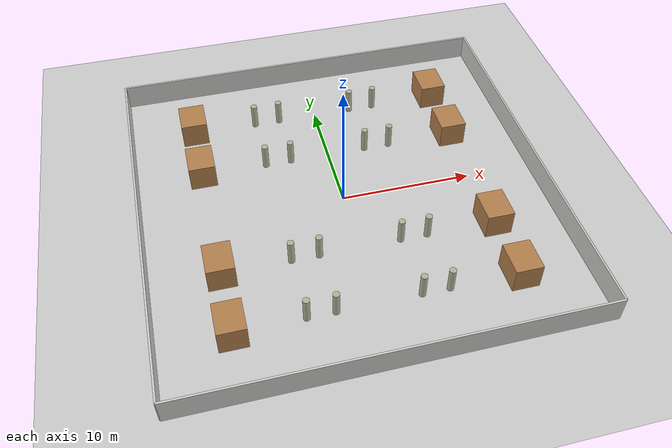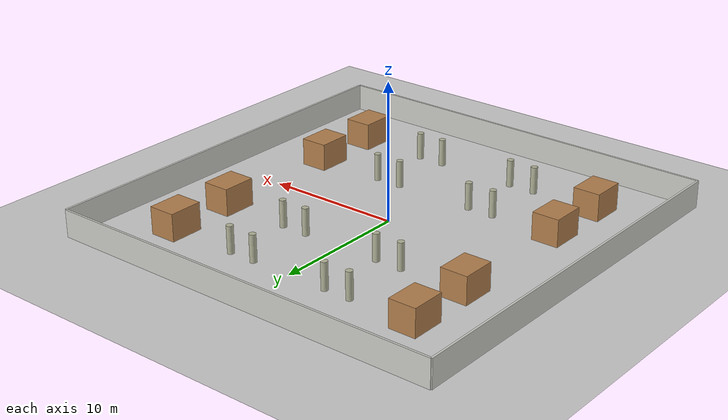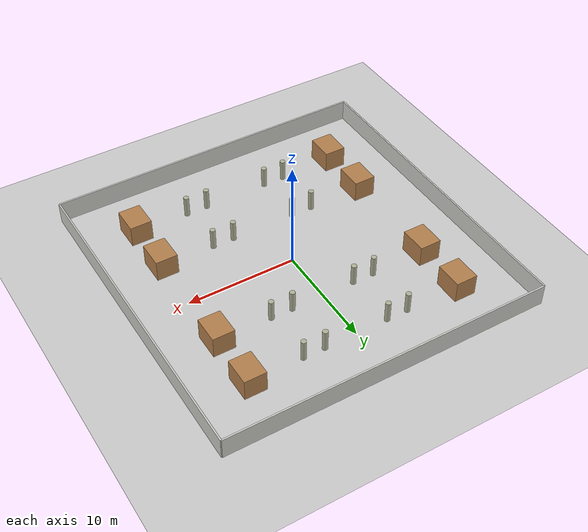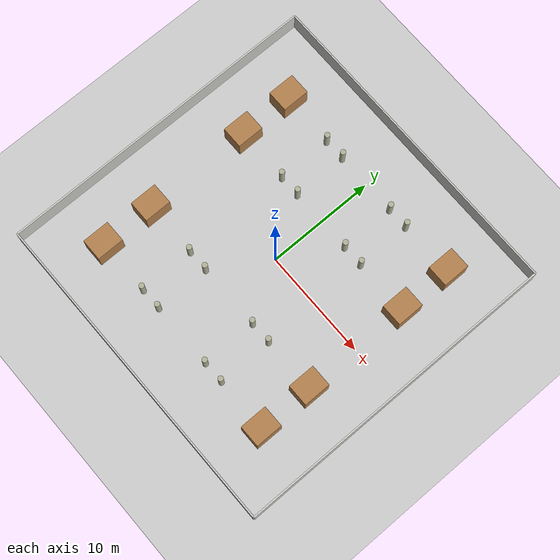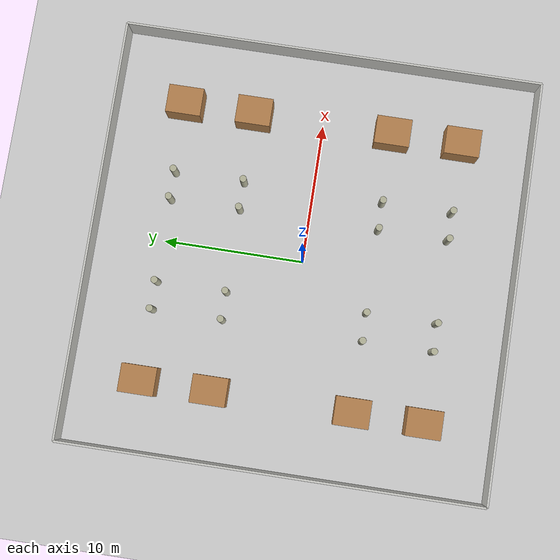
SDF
<sdf version="1.6">
 <world name="default">
  <light name="sun" type="directional">
   <pose>0 0 10 0 -0 0</pose>
   <diffuse>0.8 0.8 0.8 1</diffuse>
   <specular>0.1 0.1 0.1 1</specular>
   <attenuation>
    <range>1000</range>
    <constant>0.9</constant>
    <linear>0.01</linear>
    <quadratic>0.001</quadratic>
   </attenuation>
   <direction>-0.5 0.5 -1</direction>
   <spot><inner_angle>0</inner_angle><outer_angle>0</outer_angle><falloff>0</falloff></spot>
  </light>
  <model name="ground_plane">
   <static>1</static>
   <link name="link">
    <collision name="collision">
     <geometry><plane><normal>0 0 1</normal><size>100 100</size></plane></geometry>
     <surface><friction><ode><mu>100</mu><mu2>50</mu2></ode></friction></surface>
    </collision>
    <visual name="visual">
     <cast_shadows>0</cast_shadows>
     <geometry><plane><normal>0 0 1</normal><size>100 100</size></plane></geometry>
     <material><color rgba="0.3 0.3 0.3 1"/></material>
    </visual>
   </link>
  </model>
  <gravity>0 0 -9.8</gravity>
  <magnetic_field>6e-06 2.3e-05 -4.2e-05</magnetic_field>
  <atmosphere type="adiabatic"/>
  <physics name="default_physics" default="0" type="ode">
   <max_step_size>0.001</max_step_size>
   <real_time_factor>1</real_time_factor>
   <real_time_update_rate>1000</real_time_update_rate>
  </physics>
  <scene><ambient>0.4 0.4 0.4 1</ambient><background>0.7 0.7 0.7 1</background><shadows>1</shadows></scene>
  <spherical_coordinates>
   <surface_model>EARTH_WGS84</surface_model>
   <latitude_deg>0</latitude_deg>
   <longitude_deg>0</longitude_deg>
   <elevation>0</elevation>
   <heading_deg>0</heading_deg>
  </spherical_coordinates>
  <model name="box">
   <link name="box_1">
    <pose>-10 10 0.5 0 -0 3.14159</pose>
    <visual name="box_1_Visual">
     <pose>0 0 0.5 0 -0 0</pose>
     <geometry><box><size>2 2.5 2</size></box></geometry>
     <material>
      <script><uri>file://media/materials/scripts/gazebo.material</uri><name>Gazebo/Wood</name></script>
      <ambient>1 1 1 1</ambient>
      <diffuse>1 1 1 1</diffuse>
      <specular>0.2 0.2 0.2 1</specular>
      <emissive>0 0 0 1</emissive>
     </material>
     <meta><layer>0</layer></meta>
    </visual>
    <collision name="box_1_Collision">
     <pose>0 0 0.5 0 -0 0</pose>
     <geometry><box><size>2 2.5 2</size></box></geometry>
     <surface>
      <friction>
       <ode><mu>1</mu><mu2>1</mu2><fdir1>0 0 0</fdir1><slip1>0</slip1><slip2>0</slip2></ode>
       <torsional>
        <coefficient>1</coefficient>
        <patch_radius>0</patch_radius>
        <surface_radius>0</surface_radius>
        <use_patch_radius>1</use_patch_radius>
        <ode><slip>0</slip></ode>
       </torsional>
      </friction>
      <bounce><restitution_coefficient>0</restitution_coefficient><threshold>1e+06</threshold></bounce>
      <contact>
       <collide_without_contact>0</collide_without_contact>
       <collide_without_contact_bitmask>1</collide_without_contact_bitmask>
       <collide_bitmask>1</collide_bitmask>
       <ode>
        <soft_cfm>0</soft_cfm>
        <soft_erp>0.2</soft_erp>
        <kp>1e+13</kp>
        <kd>1</kd>
        <max_vel>0.01</max_vel>
        <min_depth>0</min_depth>
       </ode>
       <bullet>
        <split_impulse>1</split_impulse>
        <split_impulse_penetration_threshold>-0.01</split_impulse_penetration_threshold>
        <soft_cfm>0</soft_cfm>
        <soft_erp>0.2</soft_erp>
        <kp>1e+13</kp>
        <kd>1</kd>
       </bullet>
      </contact>
     </surface>
    </collision>
   </link>
   <link name="box_2">
    <pose>-10 5 0.5 0 -0 3.14159</pose>
    <visual name="box_2_Visual">
     <pose>0 0 0.5 0 -0 0</pose>
     <geometry><box><size>2 2.5 2</size></box></geometry>
     <material>
      <script><uri>file://media/materials/scripts/gazebo.material</uri><name>Gazebo/Wood</name></script>
      <ambient>1 1 1 1</ambient>
      <diffuse>1 1 1 1</diffuse>
      <specular>0.2 0.2 0.2 1</specular>
      <emissive>0 0 0 1</emissive>
     </material>
     <meta><layer>0</layer></meta>
    </visual>
    <collision name="box_2_Collision">
     <pose>0 0 0.5 0 -0 0</pose>
     <geometry><box><size>2 2.5 2</size></box></geometry>
     <surface>
      <friction>
       <ode><mu>1</mu><mu2>1</mu2><fdir1>0 0 0</fdir1><slip1>0</slip1><slip2>0</slip2></ode>
       <torsional>
        <coefficient>1</coefficient>
        <patch_radius>0</patch_radius>
        <surface_radius>0</surface_radius>
        <use_patch_radius>1</use_patch_radius>
        <ode><slip>0</slip></ode>
       </torsional>
      </friction>
      <bounce><restitution_coefficient>0</restitution_coefficient><threshold>1e+06</threshold></bounce>
      <contact>
       <collide_without_contact>0</collide_without_contact>
       <collide_without_contact_bitmask>1</collide_without_contact_bitmask>
       <collide_bitmask>1</collide_bitmask>
       <ode>
        <soft_cfm>0</soft_cfm>
        <soft_erp>0.2</soft_erp>
        <kp>1e+13</kp>
        <kd>1</kd>
        <max_vel>0.01</max_vel>
        <min_depth>0</min_depth>
       </ode>
       <bullet>
        <split_impulse>1</split_impulse>
        <split_impulse_penetration_threshold>-0.01</split_impulse_penetration_threshold>
        <soft_cfm>0</soft_cfm>
        <soft_erp>0.2</soft_erp>
        <kp>1e+13</kp>
        <kd>1</kd>
       </bullet>
      </contact>
     </surface>
    </collision>
   </link>
   <link name="box_3">
    <pose>-10 -5 0.5 0 -0 3.14159</pose>
    <visual name="box_3_Visual">
     <pose>0 0 0.5 0 -0 0</pose>
     <geometry><box><size>2 2.5 2</size></box></geometry>
     <material>
      <script><uri>file://media/materials/scripts/gazebo.material</uri><name>Gazebo/Wood</name></script>
      <ambient>1 1 1 1</ambient>
      <diffuse>1 1 1 1</diffuse>
      <specular>0.2 0.2 0.2 1</specular>
      <emissive>0 0 0 1</emissive>
     </material>
     <meta><layer>0</layer></meta>
    </visual>
    <collision name="box_3_Collision">
     <pose>0 0 0.5 0 -0 0</pose>
     <geometry><box><size>2 2.5 2</size></box></geometry>
     <surface>
      <friction>
       <ode><mu>1</mu><mu2>1</mu2><fdir1>0 0 0</fdir1><slip1>0</slip1><slip2>0</slip2></ode>
       <torsional>
        <coefficient>1</coefficient>
        <patch_radius>0</patch_radius>
        <surface_radius>0</surface_radius>
        <use_patch_radius>1</use_patch_radius>
        <ode><slip>0</slip></ode>
       </torsional>
      </friction>
      <bounce><restitution_coefficient>0</restitution_coefficient><threshold>1e+06</threshold></bounce>
      <contact>
       <collide_without_contact>0</collide_without_contact>
       <collide_without_contact_bitmask>1</collide_without_contact_bitmask>
       <collide_bitmask>1</collide_bitmask>
       <ode>
        <soft_cfm>0</soft_cfm>
        <soft_erp>0.2</soft_erp>
        <kp>1e+13</kp>
        <kd>1</kd>
        <max_vel>0.01</max_vel>
        <min_depth>0</min_depth>
       </ode>
       <bullet>
        <split_impulse>1</split_impulse>
        <split_impulse_penetration_threshold>-0.01</split_impulse_penetration_threshold>
        <soft_cfm>0</soft_cfm>
        <soft_erp>0.2</soft_erp>
        <kp>1e+13</kp>
        <kd>1</kd>
       </bullet>
      </contact>
     </surface>
    </collision>
   </link>
   <link name="box_4">
    <pose>-10 -10 0.5 0 -0 3.14159</pose>
    <visual name="box_4_Visual">
     <pose>0 0 0.5 0 -0 0</pose>
     <geometry><box><size>2 2.5 2</size></box></geometry>
     <material>
      <script><uri>file://media/materials/scripts/gazebo.material</uri><name>Gazebo/Wood</name></script>
      <ambient>1 1 1 1</ambient>
      <diffuse>1 1 1 1</diffuse>
      <specular>0.2 0.2 0.2 1</specular>
      <emissive>0 0 0 1</emissive>
     </material>
     <meta><layer>0</layer></meta>
    </visual>
    <collision name="box_4_Collision">
     <pose>0 0 0.5 0 -0 0</pose>
     <geometry><box><size>2 2.5 2</size></box></geometry>
     <surface>
      <friction>
       <ode><mu>1</mu><mu2>1</mu2><fdir1>0 0 0</fdir1><slip1>0</slip1><slip2>0</slip2></ode>
       <torsional>
        <coefficient>1</coefficient>
        <patch_radius>0</patch_radius>
        <surface_radius>0</surface_radius>
        <use_patch_radius>1</use_patch_radius>
        <ode><slip>0</slip></ode>
       </torsional>
      </friction>
      <bounce><restitution_coefficient>0</restitution_coefficient><threshold>1e+06</threshold></bounce>
      <contact>
       <collide_without_contact>0</collide_without_contact>
       <collide_without_contact_bitmask>1</collide_without_contact_bitmask>
       <collide_bitmask>1</collide_bitmask>
       <ode>
        <soft_cfm>0</soft_cfm>
        <soft_erp>0.2</soft_erp>
        <kp>1e+13</kp>
        <kd>1</kd>
        <max_vel>0.01</max_vel>
        <min_depth>0</min_depth>
       </ode>
       <bullet>
        <split_impulse>1</split_impulse>
        <split_impulse_penetration_threshold>-0.01</split_impulse_penetration_threshold>
        <soft_cfm>0</soft_cfm>
        <soft_erp>0.2</soft_erp>
        <kp>1e+13</kp>
        <kd>1</kd>
       </bullet>
      </contact>
     </surface>
    </collision>
   </link>
   <link name="box_5">
    <pose>10 -10 0.5 0 -0 3.14159</pose>
    <visual name="box_5_Visual">
     <pose>0 0 0.5 0 -0 0</pose>
     <geometry><box><size>2 2.5 2</size></box></geometry>
     <material>
      <script><uri>file://media/materials/scripts/gazebo.material</uri><name>Gazebo/Wood</name></script>
      <ambient>1 1 1 1</ambient>
      <diffuse>1 1 1 1</diffuse>
      <specular>0.2 0.2 0.2 1</specular>
      <emissive>0 0 0 1</emissive>
     </material>
     <meta><layer>0</layer></meta>
    </visual>
    <collision name="box_5_Collision">
     <pose>0 0 0.5 0 -0 0</pose>
     <geometry><box><size>2 2.5 2</size></box></geometry>
     <surface>
      <friction>
       <ode><mu>1</mu><mu2>1</mu2><fdir1>0 0 0</fdir1><slip1>0</slip1><slip2>0</slip2></ode>
       <torsional>
        <coefficient>1</coefficient>
        <patch_radius>0</patch_radius>
        <surface_radius>0</surface_radius>
        <use_patch_radius>1</use_patch_radius>
        <ode><slip>0</slip></ode>
       </torsional>
      </friction>
      <bounce><restitution_coefficient>0</restitution_coefficient><threshold>1e+06</threshold></bounce>
      <contact>
       <collide_without_contact>0</collide_without_contact>
       <collide_without_contact_bitmask>1</collide_without_contact_bitmask>
       <collide_bitmask>1</collide_bitmask>
       <ode>
        <soft_cfm>0</soft_cfm>
        <soft_erp>0.2</soft_erp>
        <kp>1e+13</kp>
        <kd>1</kd>
        <max_vel>0.01</max_vel>
        <min_depth>0</min_depth>
       </ode>
       <bullet>
        <split_impulse>1</split_impulse>
        <split_impulse_penetration_threshold>-0.01</split_impulse_penetration_threshold>
        <soft_cfm>0</soft_cfm>
        <soft_erp>0.2</soft_erp>
        <kp>1e+13</kp>
        <kd>1</kd>
       </bullet>
      </contact>
     </surface>
    </collision>
   </link>
   <link name="box_6">
    <pose>10 -5 0.5 0 -0 3.14159</pose>
    <visual name="box_6_Visual">
     <pose>0 0 0.5 0 -0 0</pose>
     <geometry><box><size>2 2.5 2</size></box></geometry>
     <material>
      <script><uri>file://media/materials/scripts/gazebo.material</uri><name>Gazebo/Wood</name></script>
      <ambient>1 1 1 1</ambient>
      <diffuse>1 1 1 1</diffuse>
      <specular>0.2 0.2 0.2 1</specular>
      <emissive>0 0 0 1</emissive>
     </material>
     <meta><layer>0</layer></meta>
    </visual>
    <collision name="box_6_Collision">
     <pose>0 0 0.5 0 -0 0</pose>
     <geometry><box><size>2 2.5 2</size></box></geometry>
     <surface>
      <friction>
       <ode><mu>1</mu><mu2>1</mu2><fdir1>0 0 0</fdir1><slip1>0</slip1><slip2>0</slip2></ode>
       <torsional>
        <coefficient>1</coefficient>
        <patch_radius>0</patch_radius>
        <surface_radius>0</surface_radius>
        <use_patch_radius>1</use_patch_radius>
        <ode><slip>0</slip></ode>
       </torsional>
      </friction>
      <bounce><restitution_coefficient>0</restitution_coefficient><threshold>1e+06</threshold></bounce>
      <contact>
       <collide_without_contact>0</collide_without_contact>
       <collide_without_contact_bitmask>1</collide_without_contact_bitmask>
       <collide_bitmask>1</collide_bitmask>
       <ode>
        <soft_cfm>0</soft_cfm>
        <soft_erp>0.2</soft_erp>
        <kp>1e+13</kp>
        <kd>1</kd>
        <max_vel>0.01</max_vel>
        <min_depth>0</min_depth>
       </ode>
       <bullet>
        <split_impulse>1</split_impulse>
        <split_impulse_penetration_threshold>-0.01</split_impulse_penetration_threshold>
        <soft_cfm>0</soft_cfm>
        <soft_erp>0.2</soft_erp>
        <kp>1e+13</kp>
        <kd>1</kd>
       </bullet>
      </contact>
     </surface>
    </collision>
   </link>
   <link name="box_7">
    <pose>10 5 0.5 0 -0 3.14159</pose>
    <visual name="box_7_Visual">
     <pose>0 0 0.5 0 -0 0</pose>
     <geometry><box><size>2 2.5 2</size></box></geometry>
     <material>
      <script><uri>file://media/materials/scripts/gazebo.material</uri><name>Gazebo/Wood</name></script>
      <ambient>1 1 1 1</ambient>
      <diffuse>1 1 1 1</diffuse>
      <specular>0.2 0.2 0.2 1</specular>
      <emissive>0 0 0 1</emissive>
     </material>
     <meta><layer>0</layer></meta>
    </visual>
    <collision name="box_7_Collision">
     <pose>0 0 0.5 0 -0 0</pose>
     <geometry><box><size>2 2.5 2</size></box></geometry>
     <surface>
      <friction>
       <ode><mu>1</mu><mu2>1</mu2><fdir1>0 0 0</fdir1><slip1>0</slip1><slip2>0</slip2></ode>
       <torsional>
        <coefficient>1</coefficient>
        <patch_radius>0</patch_radius>
        <surface_radius>0</surface_radius>
        <use_patch_radius>1</use_patch_radius>
        <ode><slip>0</slip></ode>
       </torsional>
      </friction>
      <bounce><restitution_coefficient>0</restitution_coefficient><threshold>1e+06</threshold></bounce>
      <contact>
       <collide_without_contact>0</collide_without_contact>
       <collide_without_contact_bitmask>1</collide_without_contact_bitmask>
       <collide_bitmask>1</collide_bitmask>
       <ode>
        <soft_cfm>0</soft_cfm>
        <soft_erp>0.2</soft_erp>
        <kp>1e+13</kp>
        <kd>1</kd>
        <max_vel>0.01</max_vel>
        <min_depth>0</min_depth>
       </ode>
       <bullet>
        <split_impulse>1</split_impulse>
        <split_impulse_penetration_threshold>-0.01</split_impulse_penetration_threshold>
        <soft_cfm>0</soft_cfm>
        <soft_erp>0.2</soft_erp>
        <kp>1e+13</kp>
        <kd>1</kd>
       </bullet>
      </contact>
     </surface>
    </collision>
   </link>
   <link name="box_8">
    <pose>10 10 0.5 0 -0 3.14159</pose>
    <visual name="box_8_Visual">
     <pose>0 0 0.5 0 -0 0</pose>
     <geometry><box><size>2 2.5 2</size></box></geometry>
     <material>
      <script><uri>file://media/materials/scripts/gazebo.material</uri><name>Gazebo/Wood</name></script>
      <ambient>1 1 1 1</ambient>
      <diffuse>1 1 1 1</diffuse>
      <specular>0.2 0.2 0.2 1</specular>
      <emissive>0 0 0 1</emissive>
     </material>
     <meta><layer>0</layer></meta>
    </visual>
    <collision name="box_8_Collision">
     <pose>0 0 0.5 0 -0 0</pose>
     <geometry><box><size>2 2.5 2</size></box></geometry>
     <surface>
      <friction>
       <ode><mu>1</mu><mu2>1</mu2><fdir1>0 0 0</fdir1><slip1>0</slip1><slip2>0</slip2></ode>
       <torsional>
        <coefficient>1</coefficient>
        <patch_radius>0</patch_radius>
        <surface_radius>0</surface_radius>
        <use_patch_radius>1</use_patch_radius>
        <ode><slip>0</slip></ode>
       </torsional>
      </friction>
      <bounce><restitution_coefficient>0</restitution_coefficient><threshold>1e+06</threshold></bounce>
      <contact>
       <collide_without_contact>0</collide_without_contact>
       <collide_without_contact_bitmask>1</collide_without_contact_bitmask>
       <collide_bitmask>1</collide_bitmask>
       <ode>
        <soft_cfm>0</soft_cfm>
        <soft_erp>0.2</soft_erp>
        <kp>1e+13</kp>
        <kd>1</kd>
        <max_vel>0.01</max_vel>
        <min_depth>0</min_depth>
       </ode>
       <bullet>
        <split_impulse>1</split_impulse>
        <split_impulse_penetration_threshold>-0.01</split_impulse_penetration_threshold>
        <soft_cfm>0</soft_cfm>
        <soft_erp>0.2</soft_erp>
        <kp>1e+13</kp>
        <kd>1</kd>
       </bullet>
      </contact>
     </surface>
    </collision>
   </link>
   <link name="Wall_1">
    <pose>0 15 0 0 -0 0</pose>
    <visual name="Wall_1_Visual">
     <pose>0 0 1 0 -0 0</pose>
     <geometry><box><size>30 0.15 2</size></box></geometry>
     <material>
      <script><uri>file://media/materials/scripts/gazebo.material</uri><name>Gazebo/CeilingTiled</name></script>
      <ambient>1 1 1 1</ambient>
      <diffuse>1 1 1 1</diffuse>
      <specular>0.2 0.2 0.2 1</specular>
      <emissive>0 0 0 1</emissive>
     </material>
     <meta><layer>0</layer></meta>
    </visual>
    <collision name="Wall_1_Collision">
     <pose>0 0 1 0 -0 0</pose>
     <geometry><box><size>30 0.15 2</size></box></geometry>
     <surface>
      <friction>
       <ode><mu>1</mu><mu2>1</mu2><fdir1>0 0 0</fdir1><slip1>0</slip1><slip2>0</slip2></ode>
       <torsional>
        <coefficient>1</coefficient>
        <patch_radius>0</patch_radius>
        <surface_radius>0</surface_radius>
        <use_patch_radius>1</use_patch_radius>
        <ode><slip>0</slip></ode>
       </torsional>
      </friction>
      <bounce><restitution_coefficient>0</restitution_coefficient><threshold>1e+06</threshold></bounce>
      <contact>
       <collide_without_contact>0</collide_without_contact>
       <collide_without_contact_bitmask>1</collide_without_contact_bitmask>
       <collide_bitmask>1</collide_bitmask>
       <ode>
        <soft_cfm>0</soft_cfm>
        <soft_erp>0.2</soft_erp>
        <kp>1e+13</kp>
        <kd>1</kd>
        <max_vel>0.01</max_vel>
        <min_depth>0</min_depth>
       </ode>
       <bullet>
        <split_impulse>1</split_impulse>
        <split_impulse_penetration_threshold>-0.01</split_impulse_penetration_threshold>
        <soft_cfm>0</soft_cfm>
        <soft_erp>0.2</soft_erp>
        <kp>1e+13</kp>
        <kd>1</kd>
       </bullet>
      </contact>
     </surface>
    </collision>
   </link>
   <link name="Wall_2">
    <pose>15 0 0 0 0 -1.5708</pose>
    <visual name="Wall_2_Visual">
     <pose>0 0 1 0 -0 0</pose>
     <geometry><box><size>30 0.15 2</size></box></geometry>
     <material>
      <script><uri>file://media/materials/scripts/gazebo.material</uri><name>Gazebo/CeilingTiled</name></script>
      <ambient>1 1 1 1</ambient>
      <diffuse>1 1 1 1</diffuse>
      <specular>0.2 0.2 0.2 1</specular>
      <emissive>0 0 0 1</emissive>
     </material>
     <meta><layer>0</layer></meta>
    </visual>
    <collision name="Wall_2_Collision">
     <pose>0 0 1 0 -0 0</pose>
     <geometry><box><size>30 0.15 2</size></box></geometry>
     <surface>
      <friction>
       <ode><mu>1</mu><mu2>1</mu2><fdir1>0 0 0</fdir1><slip1>0</slip1><slip2>0</slip2></ode>
       <torsional>
        <coefficient>1</coefficient>
        <patch_radius>0</patch_radius>
        <surface_radius>0</surface_radius>
        <use_patch_radius>1</use_patch_radius>
        <ode><slip>0</slip></ode>
       </torsional>
      </friction>
      <bounce><restitution_coefficient>0</restitution_coefficient><threshold>1e+06</threshold></bounce>
      <contact>
       <collide_without_contact>0</collide_without_contact>
       <collide_without_contact_bitmask>1</collide_without_contact_bitmask>
       <collide_bitmask>1</collide_bitmask>
       <ode>
        <soft_cfm>0</soft_cfm>
        <soft_erp>0.2</soft_erp>
        <kp>1e+13</kp>
        <kd>1</kd>
        <max_vel>0.01</max_vel>
        <min_depth>0</min_depth>
       </ode>
       <bullet>
        <split_impulse>1</split_impulse>
        <split_impulse_penetration_threshold>-0.01</split_impulse_penetration_threshold>
        <soft_cfm>0</soft_cfm>
        <soft_erp>0.2</soft_erp>
        <kp>1e+13</kp>
        <kd>1</kd>
       </bullet>
      </contact>
     </surface>
    </collision>
   </link>
   <link name="Wall_3">
    <pose>0 -15 0 0 -0 3.14159</pose>
    <visual name="Wall_3_Visual">
     <pose>0 0 1 0 -0 0</pose>
     <geometry><box><size>30 0.15 2</size></box></geometry>
     <material>
      <script><uri>file://media/materials/scripts/gazebo.material</uri><name>Gazebo/CeilingTiled</name></script>
      <ambient>1 1 1 1</ambient>
      <diffuse>1 1 1 1</diffuse>
      <specular>0.2 0.2 0.2 1</specular>
      <emissive>0 0 0 1</emissive>
     </material>
     <meta><layer>0</layer></meta>
    </visual>
    <collision name="Wall_3_Collision">
     <pose>0 0 1 0 -0 0</pose>
     <geometry><box><size>30 0.15 2</size></box></geometry>
     <surface>
      <friction>
       <ode><mu>1</mu><mu2>1</mu2><fdir1>0 0 0</fdir1><slip1>0</slip1><slip2>0</slip2></ode>
       <torsional>
        <coefficient>1</coefficient>
        <patch_radius>0</patch_radius>
        <surface_radius>0</surface_radius>
        <use_patch_radius>1</use_patch_radius>
        <ode><slip>0</slip></ode>
       </torsional>
      </friction>
      <bounce><restitution_coefficient>0</restitution_coefficient><threshold>1e+06</threshold></bounce>
      <contact>
       <collide_without_contact>0</collide_without_contact>
       <collide_without_contact_bitmask>1</collide_without_contact_bitmask>
       <collide_bitmask>1</collide_bitmask>
       <ode>
        <soft_cfm>0</soft_cfm>
        <soft_erp>0.2</soft_erp>
        <kp>1e+13</kp>
        <kd>1</kd>
        <max_vel>0.01</max_vel>
        <min_depth>0</min_depth>
       </ode>
       <bullet>
        <split_impulse>1</split_impulse>
        <split_impulse_penetration_threshold>-0.01</split_impulse_penetration_threshold>
        <soft_cfm>0</soft_cfm>
        <soft_erp>0.2</soft_erp>
        <kp>1e+13</kp>
        <kd>1</kd>
       </bullet>
      </contact>
     </surface>
    </collision>
   </link>
   <link name="Wall_4">
    <pose>-15 0 0 0 -0 1.5708</pose>
    <visual name="Wall_4_Visual">
     <pose>0 0 1 0 -0 0</pose>
     <geometry><box><size>30 0.15 2</size></box></geometry>
     <material>
      <script><uri>file://media/materials/scripts/gazebo.material</uri><name>Gazebo/CeilingTiled</name></script>
      <ambient>1 1 1 1</ambient>
      <diffuse>1 1 1 1</diffuse>
      <specular>0.2 0.2 0.2 1</specular>
      <emissive>0 0 0 1</emissive>
     </material>
     <meta><layer>0</layer></meta>
    </visual>
    <collision name="Wall_4_Collision">
     <pose>0 0 1 0 -0 0</pose>
     <geometry><box><size>30 0.15 2</size></box></geometry>
     <surface>
      <friction>
       <ode><mu>1</mu><mu2>1</mu2><fdir1>0 0 0</fdir1><slip1>0</slip1><slip2>0</slip2></ode>
       <torsional>
        <coefficient>1</coefficient>
        <patch_radius>0</patch_radius>
        <surface_radius>0</surface_radius>
        <use_patch_radius>1</use_patch_radius>
        <ode><slip>0</slip></ode>
       </torsional>
      </friction>
      <bounce><restitution_coefficient>0</restitution_coefficient><threshold>1e+06</threshold></bounce>
      <contact>
       <collide_without_contact>0</collide_without_contact>
       <collide_without_contact_bitmask>1</collide_without_contact_bitmask>
       <collide_bitmask>1</collide_bitmask>
       <ode>
        <soft_cfm>0</soft_cfm>
        <soft_erp>0.2</soft_erp>
        <kp>1e+13</kp>
        <kd>1</kd>
        <max_vel>0.01</max_vel>
        <min_depth>0</min_depth>
       </ode>
       <bullet>
        <split_impulse>1</split_impulse>
        <split_impulse_penetration_threshold>-0.01</split_impulse_penetration_threshold>
        <soft_cfm>0</soft_cfm>
        <soft_erp>0.2</soft_erp>
        <kp>1e+13</kp>
        <kd>1</kd>
       </bullet>
      </contact>
     </surface>
    </collision>
   </link>
   <static>1</static>
  </model>
  <model name="cylinder_1">
   <pose>-5 -10 1 0 -0 0</pose>
   <link name="link">
    <inertial>
     <mass>1</mass>
     <inertia><ixx>0.145833</ixx><ixy>0</ixy><ixz>0</ixz><iyy>0.145833</iyy><iyz>0</iyz><izz>0.125</izz></inertia>
    </inertial>
    <collision name="collision">
     <geometry><cylinder><radius>0.245816</radius><length>2</length></cylinder></geometry>
    </collision>
    <visual name="visual">
     <geometry><cylinder><radius>0.245816</radius><length>2</length></cylinder></geometry>
     <material>
      <script><name>Gazebo/Residential</name><uri>file://media/materials/scripts/gazebo.material</uri></script>
     </material>
    </visual>
   </link>
  </model>
  <model name="cylinder_2">
   <pose>-3 -10 1 0 -0 0</pose>
   <link name="link">
    <inertial>
     <mass>1</mass>
     <inertia><ixx>0.145833</ixx><ixy>0</ixy><ixz>0</ixz><iyy>0.145833</iyy><iyz>0</iyz><izz>0.125</izz></inertia>
    </inertial>
    <collision name="collision">
     <geometry><cylinder><radius>0.245816</radius><length>2</length></cylinder></geometry>
    </collision>
    <visual name="visual">
     <geometry><cylinder><radius>0.245816</radius><length>2</length></cylinder></geometry>
     <material>
      <script><name>Gazebo/Residential</name><uri>file://media/materials/scripts/gazebo.material</uri></script>
     </material>
    </visual>
   </link>
  </model>
  <model name="cylinder_3">
   <pose>-5 -5 1 0 -0 0</pose>
   <link name="link">
    <inertial>
     <mass>1</mass>
     <inertia><ixx>0.145833</ixx><ixy>0</ixy><ixz>0</ixz><iyy>0.145833</iyy><iyz>0</iyz><izz>0.125</izz></inertia>
    </inertial>
    <collision name="collision">
     <geometry><cylinder><radius>0.245816</radius><length>2</length></cylinder></geometry>
    </collision>
    <visual name="visual">
     <geometry><cylinder><radius>0.245816</radius><length>2</length></cylinder></geometry>
     <material>
      <script><name>Gazebo/Residential</name><uri>file://media/materials/scripts/gazebo.material</uri></script>
     </material>
    </visual>
   </link>
  </model>
  <model name="cylinder_4">
   <pose>-3 -5 1 0 -0 0</pose>
   <link name="link">
    <inertial>
     <mass>1</mass>
     <inertia><ixx>0.145833</ixx><ixy>0</ixy><ixz>0</ixz><iyy>0.145833</iyy><iyz>0</iyz><izz>0.125</izz></inertia>
    </inertial>
    <collision name="collision">
     <geometry><cylinder><radius>0.245816</radius><length>2</length></cylinder></geometry>
    </collision>
    <visual name="visual">
     <geometry><cylinder><radius>0.245816</radius><length>2</length></cylinder></geometry>
     <material>
      <script><name>Gazebo/Residential</name><uri>file://media/materials/scripts/gazebo.material</uri></script>
     </material>
    </visual>
   </link>
  </model>
  <model name="cylinder_5">
   <pose>5 -5 1 0 -0 0</pose>
   <link name="link">
    <inertial>
     <mass>1</mass>
     <inertia><ixx>0.145833</ixx><ixy>0</ixy><ixz>0</ixz><iyy>0.145833</iyy><iyz>0</iyz><izz>0.125</izz></inertia>
    </inertial>
    <collision name="collision">
     <geometry><cylinder><radius>0.245816</radius><length>2</length></cylinder></geometry>
    </collision>
    <visual name="visual">
     <geometry><cylinder><radius>0.245816</radius><length>2</length></cylinder></geometry>
     <material>
      <script><name>Gazebo/Residential</name><uri>file://media/materials/scripts/gazebo.material</uri></script>
     </material>
    </visual>
   </link>
  </model>
  <model name="cylinder_6">
   <pose>3 -5 1 0 -0 0</pose>
   <link name="link">
    <inertial>
     <mass>1</mass>
     <inertia><ixx>0.145833</ixx><ixy>0</ixy><ixz>0</ixz><iyy>0.145833</iyy><iyz>0</iyz><izz>0.125</izz></inertia>
    </inertial>
    <collision name="collision">
     <geometry><cylinder><radius>0.245816</radius><length>2</length></cylinder></geometry>
    </collision>
    <visual name="visual">
     <geometry><cylinder><radius>0.245816</radius><length>2</length></cylinder></geometry>
     <material>
      <script><name>Gazebo/Residential</name><uri>file://media/materials/scripts/gazebo.material</uri></script>
     </material>
    </visual>
   </link>
  </model>
  <model name="cylinder_7">
   <pose>5 -10 1 0 -0 0</pose>
   <link name="link">
    <inertial>
     <mass>1</mass>
     <inertia><ixx>0.145833</ixx><ixy>0</ixy><ixz>0</ixz><iyy>0.145833</iyy><iyz>0</iyz><izz>0.125</izz></inertia>
    </inertial>
    <collision name="collision">
     <geometry><cylinder><radius>0.245816</radius><length>2</length></cylinder></geometry>
    </collision>
    <visual name="visual">
     <geometry><cylinder><radius>0.245816</radius><length>2</length></cylinder></geometry>
     <material>
      <script><name>Gazebo/Residential</name><uri>file://media/materials/scripts/gazebo.material</uri></script>
     </material>
    </visual>
   </link>
  </model>
  <model name="cylinder_8">
   <pose>3 -10 1 0 -0 0</pose>
   <link name="link">
    <inertial>
     <mass>1</mass>
     <inertia><ixx>0.145833</ixx><ixy>0</ixy><ixz>0</ixz><iyy>0.145833</iyy><iyz>0</iyz><izz>0.125</izz></inertia>
    </inertial>
    <collision name="collision">
     <geometry><cylinder><radius>0.245816</radius><length>2</length></cylinder></geometry>
    </collision>
    <visual name="visual">
     <geometry><cylinder><radius>0.245816</radius><length>2</length></cylinder></geometry>
     <material>
      <script><name>Gazebo/Residential</name><uri>file://media/materials/scripts/gazebo.material</uri></script>
     </material>
    </visual>
   </link>
  </model>
  <model name="cylinder_9">
   <pose>-5 5 1 0 -0 0</pose>
   <link name="link">
    <inertial>
     <mass>1</mass>
     <inertia><ixx>0.145833</ixx><ixy>0</ixy><ixz>0</ixz><iyy>0.145833</iyy><iyz>0</iyz><izz>0.125</izz></inertia>
    </inertial>
    <collision name="collision">
     <geometry><cylinder><radius>0.245816</radius><length>2</length></cylinder></geometry>
    </collision>
    <visual name="visual">
     <geometry><cylinder><radius>0.245816</radius><length>2</length></cylinder></geometry>
     <material>
      <script><name>Gazebo/Residential</name><uri>file://media/materials/scripts/gazebo.material</uri></script>
     </material>
    </visual>
   </link>
  </model>
  <model name="cylinder_10">
   <pose>-3 5 1 0 -0 0</pose>
   <link name="link">
    <inertial>
     <mass>1</mass>
     <inertia><ixx>0.145833</ixx><ixy>0</ixy><ixz>0</ixz><iyy>0.145833</iyy><iyz>0</iyz><izz>0.125</izz></inertia>
    </inertial>
    <collision name="collision">
     <geometry><cylinder><radius>0.245816</radius><length>2</length></cylinder></geometry>
    </collision>
    <visual name="visual">
     <geometry><cylinder><radius>0.245816</radius><length>2</length></cylinder></geometry>
     <material>
      <script><name>Gazebo/Residential</name><uri>file://media/materials/scripts/gazebo.material</uri></script>
     </material>
    </visual>
   </link>
  </model>
  <model name="cylinder_11">
   <pose>-5 10 1 0 -0 0</pose>
   <link name="link">
    <inertial>
     <mass>1</mass>
     <inertia><ixx>0.145833</ixx><ixy>0</ixy><ixz>0</ixz><iyy>0.145833</iyy><iyz>0</iyz><izz>0.125</izz></inertia>
    </inertial>
    <collision name="collision">
     <geometry><cylinder><radius>0.245816</radius><length>2</length></cylinder></geometry>
    </collision>
    <visual name="visual">
     <geometry><cylinder><radius>0.245816</radius><length>2</length></cylinder></geometry>
     <material>
      <script><name>Gazebo/Residential</name><uri>file://media/materials/scripts/gazebo.material</uri></script>
     </material>
    </visual>
   </link>
  </model>
  <model name="cylinder_12">
   <pose>-3 10 1 0 -0 0</pose>
   <link name="link">
    <inertial>
     <mass>1</mass>
     <inertia><ixx>0.145833</ixx><ixy>0</ixy><ixz>0</ixz><iyy>0.145833</iyy><iyz>0</iyz><izz>0.125</izz></inertia>
    </inertial>
    <collision name="collision"/>
    <visual name="visual">
     <geometry><cylinder><radius>0.245816</radius><length>2</length></cylinder></geometry>
     <material>
      <script><name>Gazebo/Residential</name><uri>file://media/materials/scripts/gazebo.material</uri></script>
     </material>
    </visual>
   </link>
  </model>
  <model name="cylinder_13">
   <pose>5 10 1 0 -0 0</pose>
   <link name="link">
    <inertial>
     <mass>1</mass>
     <inertia><ixx>0.145833</ixx><ixy>0</ixy><ixz>0</ixz><iyy>0.145833</iyy><iyz>0</iyz><izz>0.125</izz></inertia>
    </inertial>
    <collision name="collision">
     <geometry><cylinder><radius>0.245816</radius><length>2</length></cylinder></geometry>
    </collision>
    <visual name="visual">
     <geometry><cylinder><radius>0.245816</radius><length>2</length></cylinder></geometry>
     <material>
      <script><name>Gazebo/Residential</name><uri>file://media/materials/scripts/gazebo.material</uri></script>
     </material>
    </visual>
   </link>
  </model>
  <model name="cylinder_14">
   <pose>3 10 1 0 -0 0</pose>
   <link name="link">
    <inertial>
     <mass>1</mass>
     <inertia><ixx>0.145833</ixx><ixy>0</ixy><ixz>0</ixz><iyy>0.145833</iyy><iyz>0</iyz><izz>0.125</izz></inertia>
    </inertial>
    <collision name="collision">
     <geometry><cylinder><radius>0.245816</radius><length>2</length></cylinder></geometry>
    </collision>
    <visual name="visual">
     <geometry><cylinder><radius>0.245816</radius><length>2</length></cylinder></geometry>
     <material>
      <script><name>Gazebo/Residential</name><uri>file://media/materials/scripts/gazebo.material</uri></script>
     </material>
    </visual>
   </link>
  </model>
  <model name="cylinder_15">
   <pose>5 5 1 0 -0 0</pose>
   <link name="link">
    <inertial>
     <mass>1</mass>
     <inertia><ixx>0.145833</ixx><ixy>0</ixy><ixz>0</ixz><iyy>0.145833</iyy><iyz>0</iyz><izz>0.125</izz></inertia>
    </inertial>
    <collision name="collision">
     <geometry><cylinder><radius>0.245816</radius><length>2</length></cylinder></geometry>
    </collision>
    <visual name="visual">
     <geometry><cylinder><radius>0.245816</radius><length>2</length></cylinder></geometry>
     <material>
      <script><name>Gazebo/Residential</name><uri>file://media/materials/scripts/gazebo.material</uri></script>
     </material>
    </visual>
   </link>
  </model>
  <model name="cylinder_16">
   <pose>3 5 1 0 -0 0</pose>
   <link name="link">
    <inertial>
     <mass>1</mass>
     <inertia><ixx>0.145833</ixx><ixy>0</ixy><ixz>0</ixz><iyy>0.145833</iyy><iyz>0</iyz><izz>0.125</izz></inertia>
    </inertial>
    <collision name="collision">
     <geometry><cylinder><radius>0.245816</radius><length>2</length></cylinder></geometry>
    </collision>
    <visual name="visual">
     <geometry><cylinder><radius>0.245816</radius><length>2</length></cylinder></geometry>
     <material>
      <script><name>Gazebo/Residential</name><uri>file://media/materials/scripts/gazebo.material</uri></script>
     </material>
    </visual>
   </link>
  </model>
 </world>
</sdf>
